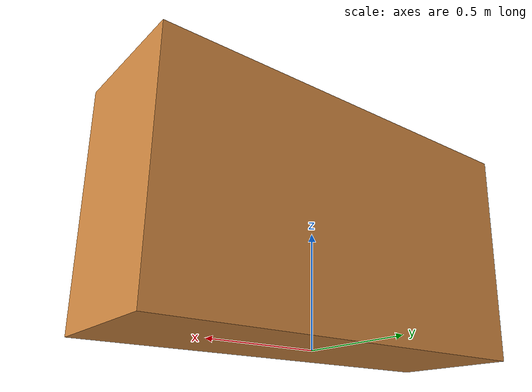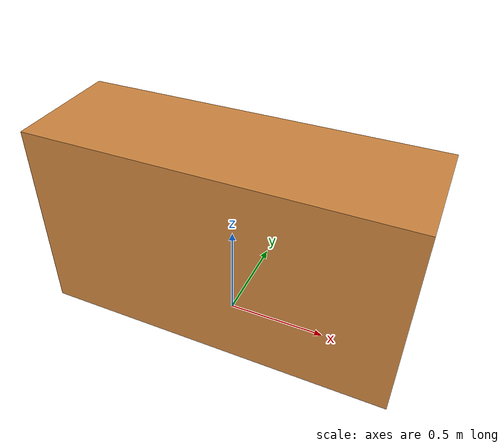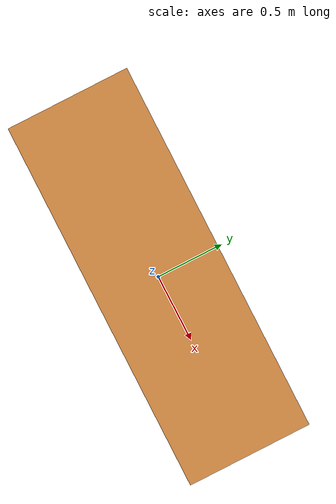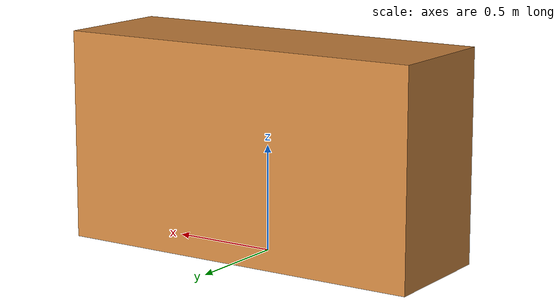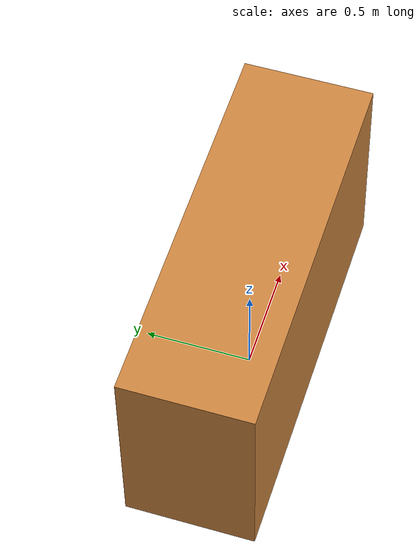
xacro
<?xml version="1.0"?>

<robot name="barra" xmlns:xacro="http://www.ros.org/wiki/xacro">

<xacro:property name="altura" value="1" />
<xacro:property name="ancho" value="0.6" />
<xacro:property name="largo" value="1.8" />

<link name="world" />

<joint name="barra" type="floating">
  <parent link="world"/>
  <child link="barra_link"/>
  <origin xyz="0 0 0" rpy="0 0 0" />
</joint>

<link name="barra_link">
  <visual>
    <geometry>
      <box size="${largo} ${ancho} ${altura}" />
    </geometry>
    <origin rpy="0 0 0" xyz="0 0 ${altura/2}" />
    <material name="wood">
		<color rgba="${205/255} ${133/255} ${63/255} 1" />
    </material>
  </visual>
  <collision>
    <origin rpy="0 0 0" xyz="0 0 ${altura/2}" />
    <geometry>
      <box size="${largo} ${ancho} ${altura}" />
    </geometry>
  </collision>
  <inertial>
    <origin rpy="0 0 0" xyz="0 0 ${altura/2}" />
    <mass value="50" />
      <inertia ixx="5" ixy="0.0" ixz="0.0" iyy="5" iyz="0.0" izz="5"/>
  </inertial>
</link>

<gazebo reference="barra_link">
  <material>Gazebo/Wood</material>
  <mu1>1</mu1>
  <mu2>1</mu2>
  <selfCollide>true</selfCollide>
  <turnGravityOff>false</turnGravityOff>
</gazebo>

</robot>
